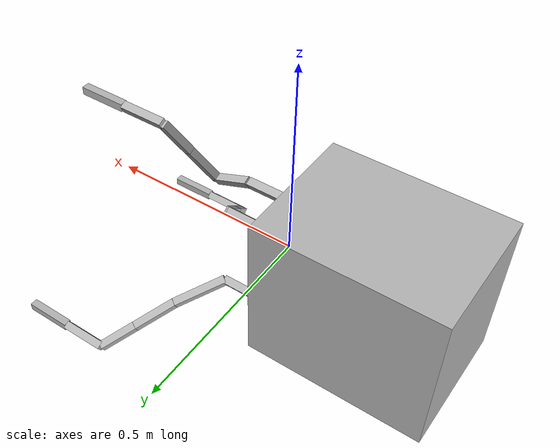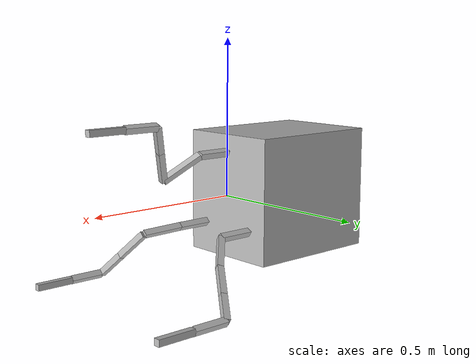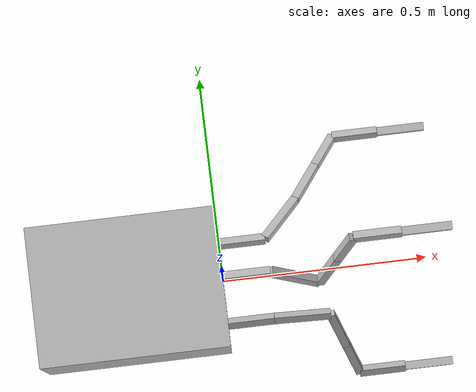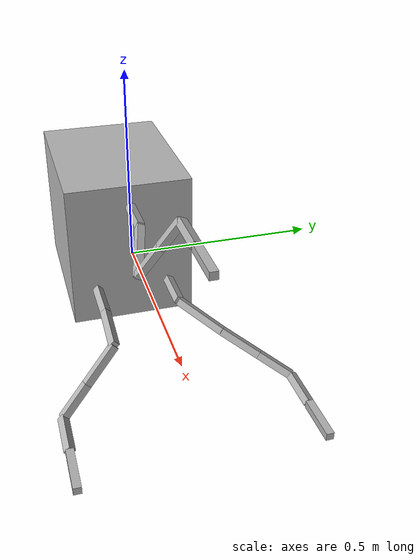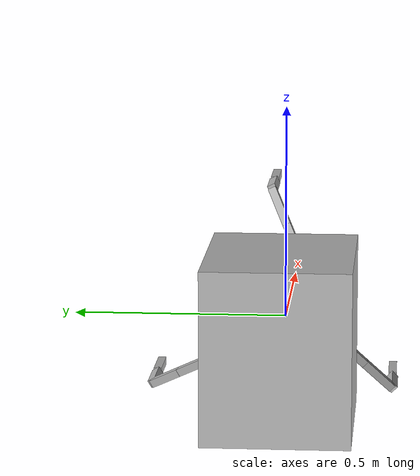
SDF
<?xml version="1.0" ?>
<sdf version="1.5">
<model name="four_bar_sdf">
<pose>0 0 0 0 0 0</pose>
<self_collide>true</self_collide>
<link name="linkROV">
<pose>-0.2286 0 0 0 0 0</pose>
<inertial>
<mass>1.0</mass>
<inertia>
<ixx>0.0227</ixx>
<iyy>0.0306</iyy>
<izz>0.0269</izz>
<ixy>0.0</ixy>
<ixz>0.0</ixz>
<iyz>0.0</iyz>
</inertia>
</inertial>
<collision name="linkROV_collision">
<geometry>
<box>
<size>0.4572 0.33805 0.39785</size>
</box>
</geometry>
</collision>
<visual name="linkROV_visual">
<geometry>
<box>
<size>0.4572 0.33805 0.39785</size>
</box>
</geometry>
<material>
<color rgba="0.3 0.3 0.3 1.0"/>
</material>
</visual>
</link>
<link name="arm1link1">
<pose>0.05750000 0.10000000 -0.10000000 -0.54054341 -0.00000000 0.00000000 </pose>
<inertial>
<mass>0.575</mass>
<inertia>
<ixx>3.8333e-05</ixx>
<iyy>6.5286e-04</iyy>
<izz>6.5286e-04</izz>
<ixy>0.0</ixy>
<ixz>0.0</ixz>
<iyz>0.0</iyz>
</inertia>
</inertial>
<collision name="arm1link1_collision">
<geometry>
<box>
<size>0.115 0.02 0.02</size>
</box>
</geometry>
</collision>
<visual name="arm1link1_visual">
<geometry>
<box>
<size>0.115 0.02 0.02</size>
</box>
</geometry>
<material>
<color rgba="0.3 0.3 0.3 1.0"/>
</material>
</visual>
</link>
<link name="arm1link2">
<pose>0.15883253 0.14679639 -0.12808572 -0.35948319 0.41285332 0.81808970 </pose>
<inertial>
<mass>0.700</mass>
<inertia>
<ixx>4.6667e-05</ixx>
<iyy>1.1667e-03</iyy>
<izz>1.1667e-03</izz>
<ixy>0.0</ixy>
<ixz>0.0</ixz>
<iyz>0.0</iyz>
</inertia>
</inertial>
<collision name="arm1link2_collision">
<geometry>
<box>
<size>0.140 0.02 0.02</size>
</box>
</geometry>
</collision>
<visual name="arm1link2_visual">
<geometry>
<box>
<size>0.140 0.02 0.02</size>
</box>
</geometry>
<material>
<color rgba="0.3 0.3 0.3 1.0"/>
</material>
</visual>
</link>
<link name="arm1link3">
<pose>0.23329904 0.23531540 -0.18121204 -0.30947495 0.45058121 0.93746506 </pose>
<inertial>
<mass>0.575</mass>
<inertia>
<ixx>3.8333e-05</ixx>
<iyy>6.5286e-04</iyy>
<izz>6.5286e-04</izz>
<ixy>0.0</ixy>
<ixz>0.0</ixz>
<iyz>0.0</iyz>
</inertia>
</inertial>
<collision name="arm1link3_collision">
<geometry>
<box>
<size>0.115 0.02 0.02</size>
</box>
</geometry>
</collision>
<visual name="arm1link3_visual">
<geometry>
<box>
<size>0.115 0.02 0.02</size>
</box>
</geometry>
<material>
<color rgba="0.3 0.3 0.3 1.0"/>
</material>
</visual>
</link>
<link name="arm1link4">
<pose>0.29057126 0.31331857 -0.22802709 -0.30916779 0.45058121 0.93746506 </pose>
<inertial>
<mass>0.500</mass>
<inertia>
<ixx>3.3333e-05</ixx>
<iyy>4.3333e-04</iyy>
<izz>4.3333e-04</izz>
<ixy>0.0</ixy>
<ixz>0.0</ixz>
<iyz>0.0</iyz>
</inertia>
</inertial>
<collision name="arm1link4_collision">
<geometry>
<box>
<size>0.100 0.02 0.02</size>
</box>
</geometry>
</collision>
<visual name="arm1link4_visual">
<geometry>
<box>
<size>0.100 0.02 0.02</size>
</box>
</geometry>
<material>
<color rgba="0.3 0.3 0.3 1.0"/>
</material>
</visual>
</link>
<link name="arm1link5">
<pose>0.37470948 0.34962342 -0.24983354 -0.54037956 0.00055675 0.00042273 </pose>
<inertial>
<mass>0.575</mass>
<inertia>
<ixx>3.8333e-05</ixx>
<iyy>6.5286e-04</iyy>
<izz>6.5286e-04</izz>
<ixy>0.0</ixy>
<ixz>0.0</ixz>
<iyz>0.0</iyz>
</inertia>
</inertial>
<collision name="arm1link5_collision">
<geometry>
<box>
<size>0.115 0.02 0.02</size>
</box>
</geometry>
</collision>
<visual name="arm1link5_visual">
<geometry>
<box>
<size>0.115 0.02 0.02</size>
</box>
</geometry>
<material>
<color rgba="0.3 0.3 0.3 1.0"/>
</material>
</visual>
</link>
<link name="arm1link6">
<pose>0.49220946 0.34967309 -0.24989896 -0.00033694 0.00055675 0.00042273 </pose>
<inertial>
<mass>0.600</mass>
<inertia>
<ixx>4.0000e-05</ixx>
<iyy>7.4000e-04</iyy>
<izz>7.4000e-04</izz>
<ixy>0.0</ixy>
<ixz>0.0</ixz>
<iyz>0.0</iyz>
</inertia>
</inertial>
<collision name="arm1link6_collision">
<geometry>
<box>
<size>0.120 0.02 0.02</size>
</box>
</geometry>
</collision>
<visual name="arm1link6_visual">
<geometry>
<box>
<size>0.120 0.02 0.02</size>
</box>
</geometry>
<material>
<color rgba="0.3 0.3 0.3 1.0"/>
</material>
</visual>
</link>
<link name="arm2link1">
<pose>0.05750000 -0.10000000 -0.10000000 -2.35600000 0.00000000 0.00000000 </pose>
<inertial>
<mass>0.575</mass>
<inertia>
<ixx>3.8333e-05</ixx>
<iyy>6.5286e-04</iyy>
<izz>6.5286e-04</izz>
<ixy>0.0</ixy>
<ixz>0.0</ixz>
<iyz>0.0</iyz>
</inertia>
</inertial>
<collision name="arm2link1_collision">
<geometry>
<box>
<size>0.115 0.02 0.02</size>
</box>
</geometry>
</collision>
<visual name="arm2link1_visual">
<geometry>
<box>
<size>0.115 0.02 0.02</size>
</box>
</geometry>
<material>
<color rgba="0.3 0.3 0.3 1.0"/>
</material>
</visual>
</link>
<link name="arm2link2">
<pose>0.18493000 -0.10216000 -0.10216000 -2.35650000 0.03089300 -0.03089700 </pose>
<inertial>
<mass>0.700</mass>
<inertia>
<ixx>4.6667e-05</ixx>
<iyy>1.1667e-03</iyy>
<izz>1.1667e-03</izz>
<ixy>0.0</ixy>
<ixz>0.0</ixz>
<iyz>0.0</iyz>
</inertia>
</inertial>
<collision name="arm2link2_collision">
<geometry>
<box>
<size>0.140 0.02 0.02</size>
</box>
</geometry>
</collision>
<visual name="arm2link2_visual">
<geometry>
<box>
<size>0.140 0.02 0.02</size>
</box>
</geometry>
<material>
<color rgba="0.3 0.3 0.3 1.0"/>
</material>
</visual>
</link>
<link name="arm2link3">
<pose>0.27133000 -0.14327000 -0.14329000 -2.86260000 0.74453000 -1.17090000 </pose>
<inertial>
<mass>0.575</mass>
<inertia>
<ixx>3.8333e-05</ixx>
<iyy>6.5286e-04</iyy>
<izz>6.5286e-04</izz>
<ixy>0.0</ixy>
<ixz>0.0</ixz>
<iyz>0.0</iyz>
</inertia>
</inertial>
<collision name="arm2link3_collision">
<geometry>
<box>
<size>0.115 0.02 0.02</size>
</box>
</geometry>
</collision>
<visual name="arm2link3_visual">
<geometry>
<box>
<size>0.115 0.02 0.02</size>
</box>
</geometry>
<material>
<color rgba="0.3 0.3 0.3 1.0"/>
</material>
</visual>
</link>
<link name="arm2link4">
<pose>0.30211000 -0.21609000 -0.21613000 0.27902000 0.74453000 -1.17090000 </pose>
<inertial>
<mass>0.500</mass>
<inertia>
<ixx>3.3333e-05</ixx>
<iyy>4.3333e-04</iyy>
<izz>4.3333e-04</izz>
<ixy>0.0</ixy>
<ixz>0.0</ixz>
<iyz>0.0</iyz>
</inertia>
</inertial>
<collision name="arm2link4_collision">
<geometry>
<box>
<size>0.100 0.02 0.02</size>
</box>
</geometry>
</collision>
<visual name="arm2link4_visual">
<geometry>
<box>
<size>0.100 0.02 0.02</size>
</box>
</geometry>
<material>
<color rgba="0.3 0.3 0.3 1.0"/>
</material>
</visual>
</link>
<link name="arm2link5">
<pose>0.37392000 -0.24998000 -0.25002000 0.78560000 0.00017590 -0.00027246 </pose>
<inertial>
<mass>0.575</mass>
<inertia>
<ixx>3.8333e-05</ixx>
<iyy>6.5286e-04</iyy>
<izz>6.5286e-04</izz>
<ixy>0.0</ixy>
<ixz>0.0</ixz>
<iyz>0.0</iyz>
</inertia>
</inertial>
<collision name="arm2link5_collision">
<geometry>
<box>
<size>0.115 0.02 0.02</size>
</box>
</geometry>
</collision>
<visual name="arm2link5_visual">
<geometry>
<box>
<size>0.115 0.02 0.02</size>
</box>
</geometry>
<material>
<color rgba="0.3 0.3 0.3 1.0"/>
</material>
</visual>
</link>
<link name="arm2link6">
<pose>0.49142000 -0.25001000 -0.25004000 -0.00038989 0.00017590 -0.00027246 </pose>
<inertial>
<mass>0.600</mass>
<inertia>
<ixx>4.0000e-05</ixx>
<iyy>7.4000e-04</iyy>
<izz>7.4000e-04</izz>
<ixy>0.0</ixy>
<ixz>0.0</ixz>
<iyz>0.0</iyz>
</inertia>
</inertial>
<collision name="arm2link6_collision">
<geometry>
<box>
<size>0.120 0.02 0.02</size>
</box>
</geometry>
</collision>
<visual name="arm2link6_visual">
<geometry>
<box>
<size>0.120 0.02 0.02</size>
</box>
</geometry>
<material>
<color rgba="0.3 0.3 0.3 1.0"/>
</material>
</visual>
</link>
<link name="arm3link1">
<pose>0.05750000 0.00000000 0.14142000 1.13370000 0.00000000 0.00000000 </pose>
<inertial>
<mass>0.575</mass>
<inertia>
<ixx>3.8333e-05</ixx>
<iyy>6.5286e-04</iyy>
<izz>6.5286e-04</izz>
<ixy>0.0</ixy>
<ixz>0.0</ixz>
<iyz>0.0</iyz>
</inertia>
</inertial>
<collision name="arm3link1_collision">
<geometry>
<box>
<size>0.115 0.02 0.02</size>
</box>
</geometry>
</collision>
<visual name="arm3link1_visual">
<geometry>
<box>
<size>0.115 0.02 0.02</size>
</box>
</geometry>
<material>
<color rgba="0.3 0.3 0.3 1.0"/>
</material>
</visual>
</link>
<link name="arm3link2">
<pose>0.17324000 -0.01643900 0.10624000 1.05910000 0.52656000 -0.27510000 </pose>
<inertial>
<mass>0.700</mass>
<inertia>
<ixx>4.6667e-05</ixx>
<iyy>1.1667e-03</iyy>
<izz>1.1667e-03</izz>
<ixy>0.0</ixy>
<ixz>0.0</ixz>
<iyz>0.0</iyz>
</inertia>
</inertial>
<collision name="arm3link2_collision">
<geometry>
<box>
<size>0.140 0.02 0.02</size>
</box>
</geometry>
</collision>
<visual name="arm3link2_visual">
<geometry>
<box>
<size>0.140 0.02 0.02</size>
</box>
</geometry>
<material>
<color rgba="0.3 0.3 0.3 1.0"/>
</material>
</visual>
</link>
<link name="arm3link3">
<pose>0.25430000 -0.01053400 0.11888000 0.70394000 -0.98199000 0.77502000 </pose>
<inertial>
<mass>0.575</mass>
<inertia>
<ixx>3.8333e-05</ixx>
<iyy>6.5286e-04</iyy>
<izz>6.5286e-04</izz>
<ixy>0.0</ixy>
<ixz>0.0</ixz>
<iyz>0.0</iyz>
</inertia>
</inertial>
<collision name="arm3link3_collision">
<geometry>
<box>
<size>0.115 0.02 0.02</size>
</box>
</geometry>
</collision>
<visual name="arm3link3_visual">
<geometry>
<box>
<size>0.115 0.02 0.02</size>
</box>
</geometry>
<material>
<color rgba="0.3 0.3 0.3 1.0"/>
</material>
</visual>
</link>
<link name="arm3link4">
<pose>0.29695000 0.03124200 0.20828000 0.70396000 -0.98199000 0.77502000 </pose>
<inertial>
<mass>0.500</mass>
<inertia>
<ixx>3.3333e-05</ixx>
<iyy>4.3333e-04</iyy>
<izz>4.3333e-04</izz>
<ixy>0.0</ixy>
<ixz>0.0</ixz>
<iyz>0.0</iyz>
</inertia>
</inertial>
<collision name="arm3link4_collision">
<geometry>
<box>
<size>0.100 0.02 0.02</size>
</box>
</geometry>
</collision>
<visual name="arm3link4_visual">
<geometry>
<box>
<size>0.100 0.02 0.02</size>
</box>
</geometry>
<material>
<color rgba="0.3 0.3 0.3 1.0"/>
</material>
</visual>
</link>
<link name="arm3link5">
<pose>0.37429000 0.05067000 0.24985000 1.13370000 0.00011302 -0.00003308 </pose>
<inertial>
<mass>0.575</mass>
<inertia>
<ixx>3.8333e-05</ixx>
<iyy>6.5286e-04</iyy>
<izz>6.5286e-04</izz>
<ixy>0.0</ixy>
<ixz>0.0</ixz>
<iyz>0.0</iyz>
</inertia>
</inertial>
<collision name="arm3link5_collision">
<geometry>
<box>
<size>0.115 0.02 0.02</size>
</box>
</geometry>
</collision>
<visual name="arm3link5_visual">
<geometry>
<box>
<size>0.115 0.02 0.02</size>
</box>
</geometry>
<material>
<color rgba="0.3 0.3 0.3 1.0"/>
</material>
</visual>
</link>
<link name="arm3link6">
<pose>0.49179000 0.05066600 0.24984000 -0.00005145 0.00011302 -0.00003308 </pose>
<inertial>
<mass>0.600</mass>
<inertia>
<ixx>4.0000e-05</ixx>
<iyy>7.4000e-04</iyy>
<izz>7.4000e-04</izz>
<ixy>0.0</ixy>
<ixz>0.0</ixz>
<iyz>0.0</iyz>
</inertia>
</inertial>
<collision name="arm3link6_collision">
<geometry>
<box>
<size>0.120 0.02 0.02</size>
</box>
</geometry>
</collision>
<visual name="arm3link6_visual">
<geometry>
<box>
<size>0.120 0.02 0.02</size>
</box>
</geometry>
<material>
<color rgba="0.3 0.3 0.3 1.0"/>
</material>
</visual>
</link>
<joint name="arm1_jointgrip" type="fixed">
<pose>0 0 0 0 0 0</pose>
<parent>world</parent>
<child>arm1link6</child>
</joint>
<joint name="arm1_joint1" type="revolute">
<pose>0 0 0 0 0 0</pose>
<parent>linkROV</parent>
<child>arm1link1</child>
<axis>
<xyz>1 0 0</xyz>
<dynamics>
<damping>0.05</damping>
<friction>0</friction>
<spring_reference>0</spring_reference>
<spring_stiffness>10.0</spring_stiffness>
</dynamics>
</axis>
</joint>
<joint name="arm1_joint2" type="revolute">
<pose>-0.07 0 0 0 0 0</pose>
<parent>arm1link1</parent>
<child>arm1link2</child>
<axis>
<xyz>0 0 1</xyz>
<dynamics>
<damping>0.05</damping>
<friction>0</friction>
<spring_reference>0</spring_reference>
<spring_stiffness>10.0</spring_stiffness>
</dynamics>
</axis>
</joint>
<joint name="arm1_joint3" type="revolute">
<pose>-0.0575 0 0 0 0 0</pose>
<parent>arm1link2</parent>
<child>arm1link3</child>
<axis>
<xyz>0 0 1</xyz>
<dynamics>
<damping>0.05</damping>
<friction>0</friction>
<spring_reference>0</spring_reference>
<spring_stiffness>10.0</spring_stiffness>
</dynamics>
</axis>
</joint>
<joint name="arm1_joint4" type="revolute">
<pose>-0.05 0 0 0 0 0</pose>
<parent>arm1link3</parent>
<child>arm1link4</child>
<axis>
<xyz>1 0 0</xyz>
<dynamics>
<damping>0.05</damping>
<friction>0</friction>
<spring_reference>0</spring_reference>
<spring_stiffness>10.0</spring_stiffness>
</dynamics>
</axis>
</joint>
<joint name="arm1_joint5" type="revolute">
<pose>-0.0575 0 0 0 0 0</pose>
<parent>arm1link4</parent>
<child>arm1link5</child>
<axis>
<xyz>0 0 1</xyz>
<dynamics>
<damping>0.05</damping>
<friction>0</friction>
<spring_reference>0</spring_reference>
<spring_stiffness>10.0</spring_stiffness>
</dynamics>
</axis>
</joint>
<joint name="arm1_joint6" type="revolute">
<pose>-0.06 0 0 0 0 0</pose>
<parent>arm1link5</parent>
<child>arm1link6</child>
<axis>
<xyz>1 0 0</xyz>
<dynamics>
<damping>0.05</damping>
<friction>0</friction>
<spring_reference>0</spring_reference>
<spring_stiffness>10.0</spring_stiffness>
</dynamics>
</axis>
</joint>
<joint name="arm2_jointgrip" type="fixed">
<pose>0 0 0 0 0 0</pose>
<parent>world</parent>
<child>arm2link6</child>
</joint>
<joint name="arm2_joint1" type="revolute">
<pose>0 0 0 0 0 0</pose>
<parent>linkROV</parent>
<child>arm2link1</child>
<axis>
<xyz>1 0 0</xyz>
<dynamics>
<damping>0.05</damping>
<friction>0</friction>
<spring_reference>0</spring_reference>
<spring_stiffness>10.0</spring_stiffness>
</dynamics>
</axis>
</joint>
<joint name="arm2_joint2" type="revolute">
<pose>-0.07 0 0 0 0 0</pose>
<parent>arm2link1</parent>
<child>arm2link2</child>
<axis>
<xyz>0 0 1</xyz>
<dynamics>
<damping>0.05</damping>
<friction>0</friction>
<spring_reference>0</spring_reference>
<spring_stiffness>10.0</spring_stiffness>
</dynamics>
</axis>
</joint>
<joint name="arm2_joint3" type="revolute">
<pose>-0.0575 0 0 0 0 0</pose>
<parent>arm2link2</parent>
<child>arm2link3</child>
<axis>
<xyz>0 0 1</xyz>
<dynamics>
<damping>0.05</damping>
<friction>0</friction>
<spring_reference>0</spring_reference>
<spring_stiffness>10.0</spring_stiffness>
</dynamics>
</axis>
</joint>
<joint name="arm2_joint4" type="revolute">
<pose>-0.05 0 0 0 0 0</pose>
<parent>arm2link3</parent>
<child>arm2link4</child>
<axis>
<xyz>1 0 0</xyz>
<dynamics>
<damping>0.05</damping>
<friction>0</friction>
<spring_reference>0</spring_reference>
<spring_stiffness>10.0</spring_stiffness>
</dynamics>
</axis>
</joint>
<joint name="arm2_joint5" type="revolute">
<pose>-0.0575 0 0 0 0 0</pose>
<parent>arm2link4</parent>
<child>arm2link5</child>
<axis>
<xyz>0 0 1</xyz>
<dynamics>
<damping>0.05</damping>
<friction>0</friction>
<spring_reference>0</spring_reference>
<spring_stiffness>10.0</spring_stiffness>
</dynamics>
</axis>
</joint>
<joint name="arm2_joint6" type="revolute">
<pose>-0.06 0 0 0 0 0</pose>
<parent>arm2link5</parent>
<child>arm2link6</child>
<axis>
<xyz>1 0 0</xyz>
<dynamics>
<damping>0.05</damping>
<friction>0</friction>
<spring_reference>0</spring_reference>
<spring_stiffness>10.0</spring_stiffness>
</dynamics>
</axis>
</joint>
<joint name="arm3_jointgrip" type="fixed">
<pose>0 0 0 0 0 0</pose>
<parent>world</parent>
<child>arm3link6</child>
</joint>
<joint name="arm3_joint1" type="revolute">
<pose>0 0 0 0 0 0</pose>
<parent>linkROV</parent>
<child>arm3link1</child>
<axis>
<xyz>1 0 0</xyz>
<dynamics>
<damping>0.05</damping>
<friction>0</friction>
<spring_reference>0</spring_reference>
<spring_stiffness>10.0</spring_stiffness>
</dynamics>
</axis>
</joint>
<joint name="arm3_joint2" type="revolute">
<pose>-0.07 0 0 0 0 0</pose>
<parent>arm3link1</parent>
<child>arm3link2</child>
<axis>
<xyz>0 0 1</xyz>
<dynamics>
<damping>0.05</damping>
<friction>0</friction>
<spring_reference>0</spring_reference>
<spring_stiffness>10.0</spring_stiffness>
</dynamics>
</axis>
</joint>
<joint name="arm3_joint3" type="revolute">
<pose>-0.0575 0 0 0 0 0</pose>
<parent>arm3link2</parent>
<child>arm3link3</child>
<axis>
<xyz>0 0 1</xyz>
<dynamics>
<damping>0.05</damping>
<friction>0</friction>
<spring_reference>0</spring_reference>
<spring_stiffness>10.0</spring_stiffness>
</dynamics>
</axis>
</joint>
<joint name="arm3_joint4" type="revolute">
<pose>-0.05 0 0 0 0 0</pose>
<parent>arm3link3</parent>
<child>arm3link4</child>
<axis>
<xyz>1 0 0</xyz>
<dynamics>
<damping>0.05</damping>
<friction>0</friction>
<spring_reference>0</spring_reference>
<spring_stiffness>10.0</spring_stiffness>
</dynamics>
</axis>
</joint>
<joint name="arm3_joint5" type="revolute">
<pose>-0.0575 0 0 0 0 0</pose>
<parent>arm3link4</parent>
<child>arm3link5</child>
<axis>
<xyz>0 0 1</xyz>
<dynamics>
<damping>0.05</damping>
<friction>0</friction>
<spring_reference>0</spring_reference>
<spring_stiffness>10.0</spring_stiffness>
</dynamics>
</axis>
</joint>
<joint name="arm3_joint6" type="revolute">
<pose>-0.06 0 0 0 0 0</pose>
<parent>arm3link5</parent>
<child>arm3link6</child>
<axis>
<xyz>1 0 0</xyz>
<dynamics>
<damping>0.05</damping>
<friction>0</friction>
<spring_reference>0</spring_reference>
<spring_stiffness>10.0</spring_stiffness>
</dynamics>
</axis>
</joint>
</model>
</sdf>
